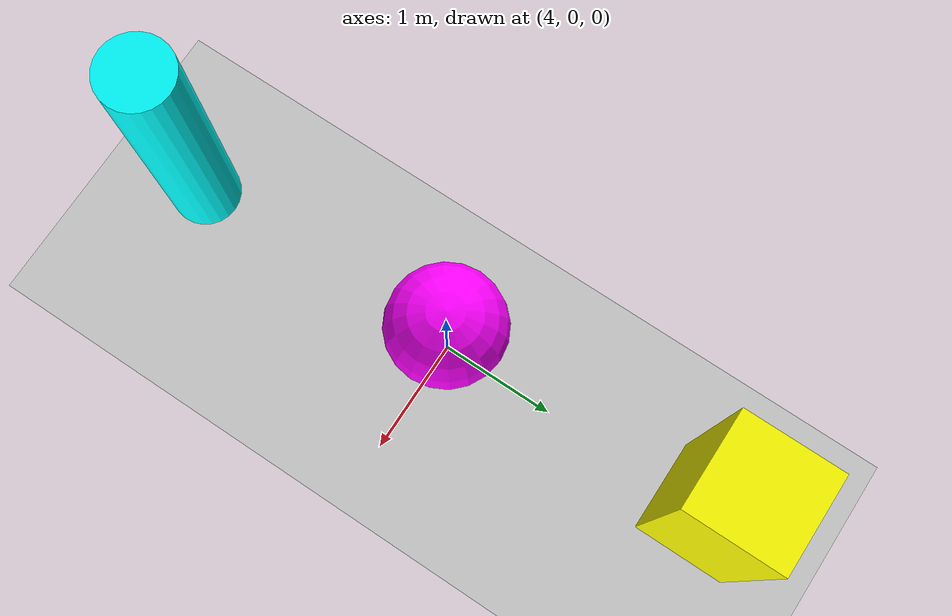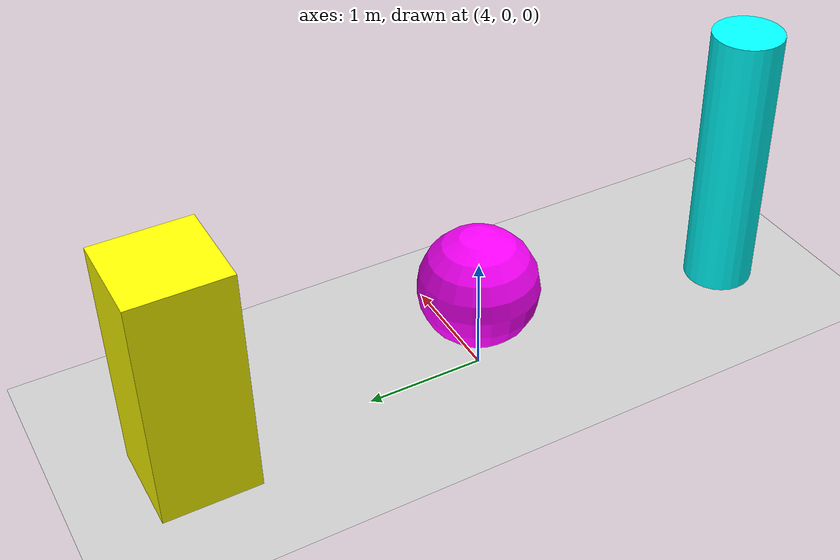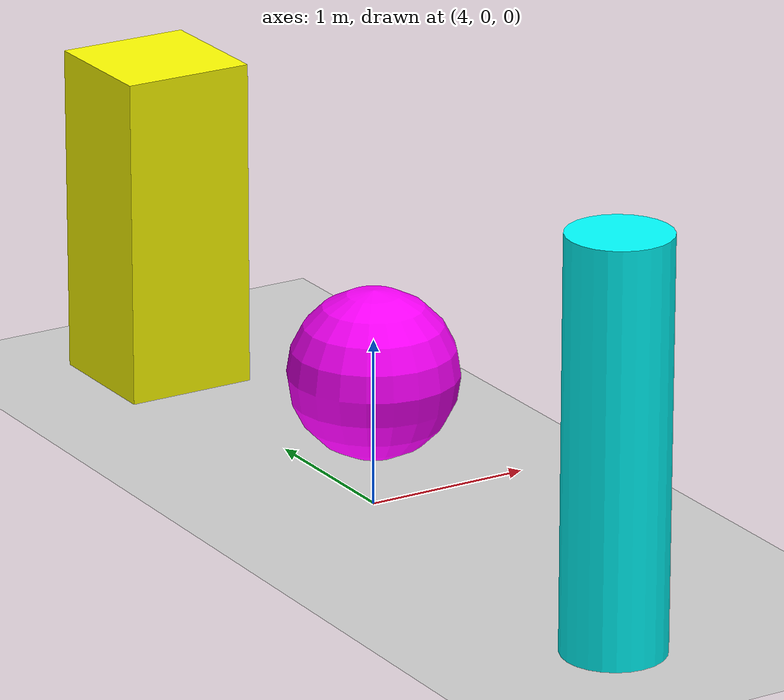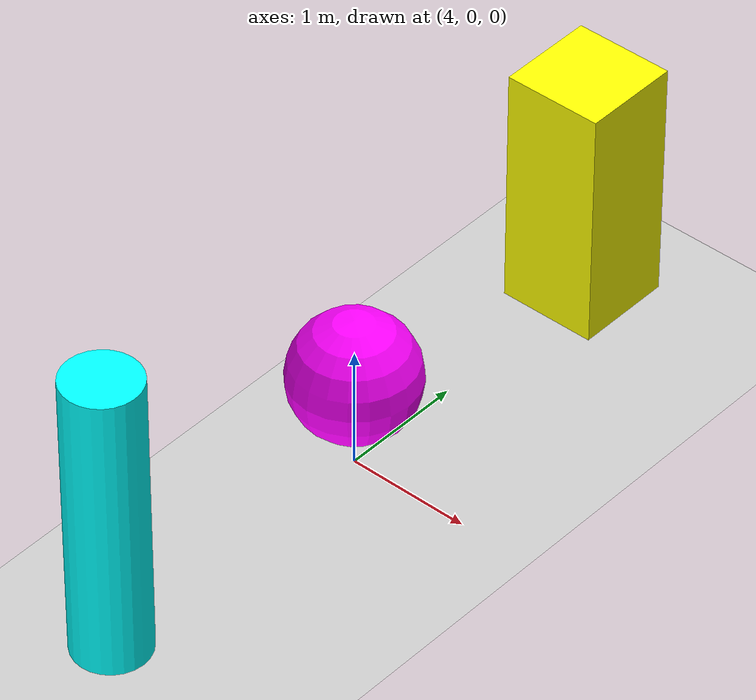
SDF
<?xml version="1.0" ?>
<sdf version="1.6">
  <world name="front_medium_semicircle_world">

    <include>
      <uri>model://sun</uri>
    </include>

    <include>
      <uri>model://ground_plane</uri>
    </include>

    <physics type="ode">
      <max_step_size>0.001</max_step_size>
      <real_time_factor>1</real_time_factor>
      <real_time_update_rate>1000</real_time_update_rate>
    </physics>

    <!-- Средний полукруг объектов перед камерой (направление +X) -->
    <model name="medium_yellow_pyramid">
      <pose>4 2.5 1.0 0 0 0</pose>
      <static>true</static>
      <link name="link">
        <visual name="visual">
          <geometry>
            <box><size>0.8 0.8 2.0</size></box>
          </geometry>
          <material>
            <ambient>1 1 0 1</ambient>
            <diffuse>1 1 0 1</diffuse>
          </material>
        </visual>
      </link>
    </model>

    <model name="medium_magenta_sphere">
      <pose>4 0 0.8 0 0 0</pose>
      <static>true</static>
      <link name="link">
        <visual name="visual">
          <geometry>
            <sphere><radius>0.5</radius></sphere>
          </geometry>
          <material>
            <ambient>1 0 1 1</ambient>
            <diffuse>1 0 1 1</diffuse>
          </material>
        </visual>
      </link>
    </model>

    <model name="medium_cyan_cylinder">
      <pose>4 -2.5 1.2 0 0 0</pose>
      <static>true</static>
      <link name="link">
        <visual name="visual">
          <geometry>
            <cylinder>
              <radius>0.3</radius>
              <length>2.4</length>
            </cylinder>
          </geometry>
          <material>
            <ambient>0 1 1 1</ambient>
            <diffuse>0 1 1 1</diffuse>
          </material>
        </visual>
      </link>
    </model>

  </world>
</sdf>
